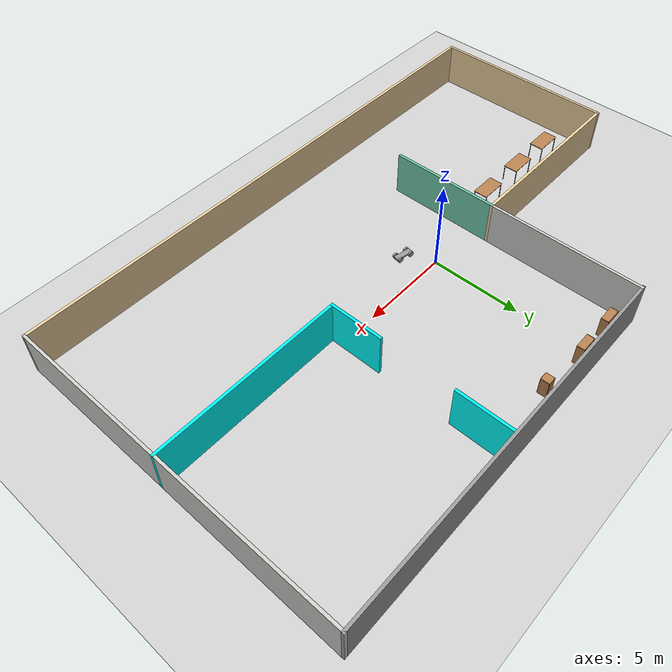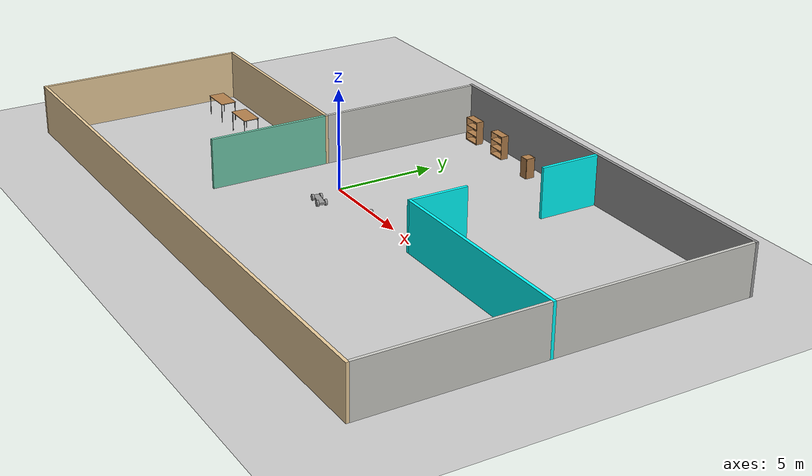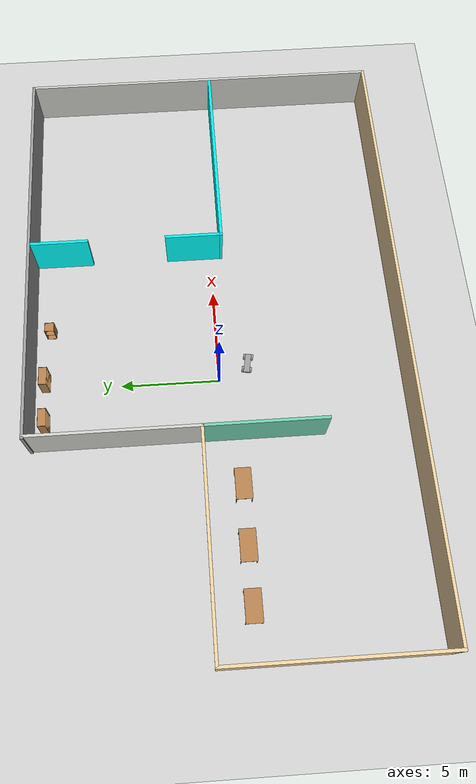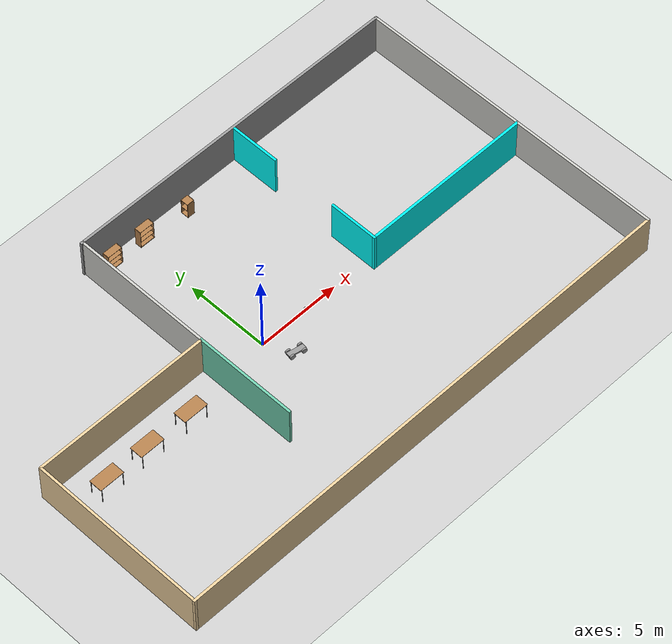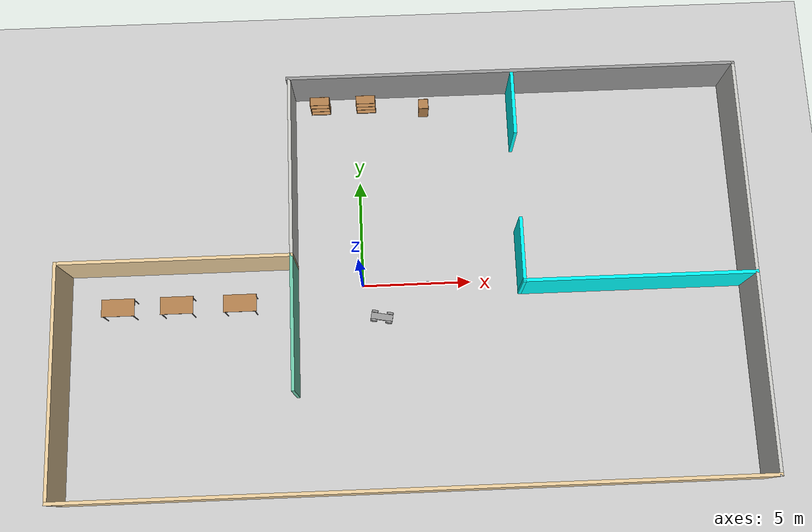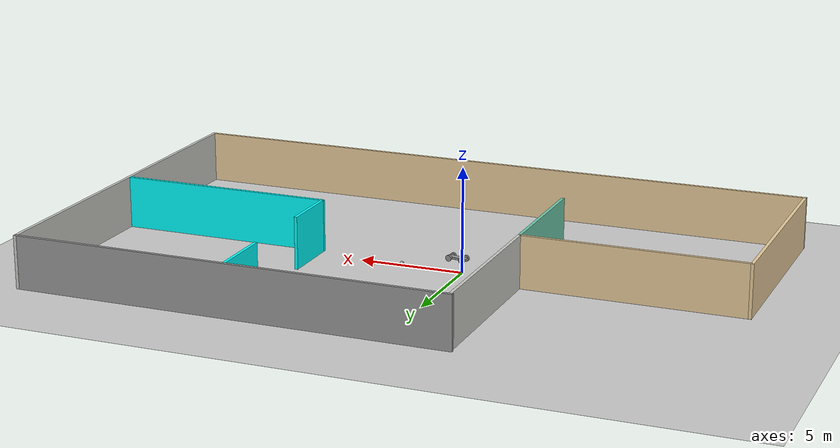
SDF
<sdf version="1.6">
 <world name="default">
  <model name="ground_plane">
   <static>1</static>
   <link name="link">
    <collision name="collision">
     <geometry><plane><normal>0 0 1</normal><size>100 100</size></plane></geometry>
     <surface>
      <contact><collide_bitmask>65535</collide_bitmask></contact>
      <friction><ode><mu>100</mu><mu2>50</mu2></ode></friction>
     </surface>
    </collision>
    <visual name="visual">
     <cast_shadows>0</cast_shadows>
     <geometry><plane><normal>0 0 1</normal><size>100 100</size></plane></geometry>
     <material>
      <script><uri>file://media/materials/scripts/gazebo.material</uri><name>Gazebo/Grey</name></script>
     </material>
    </visual>
   </link>
  </model>
  <model name="building">
   <pose>1.986 0.00092 0 0 -0 0</pose>
   <link name="Wall_10">
    <collision name="Wall_10_Collision">
     <geometry><box><size>6.15 0.15 2.5</size></box></geometry>
     <pose>0 0 1.25 0 -0 0</pose>
    </collision>
    <visual name="Wall_10_Visual">
     <pose>0 0 1.25 0 -0 0</pose>
     <geometry><box><size>6.15 0.15 2.5</size></box></geometry>
     <material>
      <script><uri>file://media/materials/scripts/gazebo.material</uri><name>Gazebo/Grey</name></script>
      <ambient>0.435294 0.796078 0.67451 1</ambient>
     </material>
     <meta><layer>0</layer></meta>
    </visual>
    <pose>-5.063 -2.00092 0 0 0 -1.5708</pose>
   </link>
   <link name="Wall_12">
    <collision name="Wall_12_Collision">
     <geometry><box><size>10.4574 0.15 2.5</size></box></geometry>
     <pose>0 0 1.25 0 -0 0</pose>
    </collision>
    <visual name="Wall_12_Visual">
     <pose>0 0 1.25 0 -0 0</pose>
     <geometry><box><size>10.4574 0.15 2.5</size></box></geometry>
     <material>
      <script><uri>file://media/materials/scripts/gazebo.material</uri><name>Gazebo/Grey</name></script>
      <ambient>0 1 1 1</ambient>
     </material>
     <meta><layer>0</layer></meta>
    </visual>
    <pose>10.3965 -0.568923 0 0 -0 3.14159</pose>
   </link>
   <link name="Wall_13">
    <collision name="Wall_13_Collision">
     <geometry><box><size>3 0.15 2.5</size></box></geometry>
     <pose>0 0 1.25 0 -0 0</pose>
    </collision>
    <visual name="Wall_13_Visual">
     <pose>0 0 1.25 0 -0 0</pose>
     <geometry><box><size>3 0.15 2.5</size></box></geometry>
     <material>
      <script><uri>file://media/materials/scripts/gazebo.material</uri><name>Gazebo/Grey</name></script>
      <ambient>0 1 1 1</ambient>
     </material>
     <meta><layer>0</layer></meta>
    </visual>
    <pose>5.24289 0.856077 0 0 -0 1.57087</pose>
   </link>
   <link name="Wall_15">
    <collision name="Wall_15_Collision">
     <geometry><box><size>3 0.15 2.5</size></box></geometry>
     <pose>0 0 1.25 0 -0 0</pose>
    </collision>
    <visual name="Wall_15_Visual">
     <pose>0 0 1.25 0 -0 0</pose>
     <geometry><box><size>3 0.15 2.5</size></box></geometry>
     <material>
      <script><uri>file://media/materials/scripts/gazebo.material</uri><name>Gazebo/Grey</name></script>
      <ambient>0 1 1 1</ambient>
     </material>
     <meta><layer>0</layer></meta>
    </visual>
    <pose>5.25855 7.85224 0 0 0 -1.5708</pose>
   </link>
   <link name="Wall_3">
    <collision name="Wall_3_Collision">
     <geometry><box><size>10.5741 0.15 2.5</size></box></geometry>
     <pose>0 0 1.25 0 -0 0</pose>
    </collision>
    <visual name="Wall_3_Visual">
     <pose>0 0 1.25 0 -0 0</pose>
     <geometry><box><size>10.5741 0.15 2.5</size></box></geometry>
     <material>
      <script><uri>file://media/materials/scripts/gazebo.material</uri><name>Gazebo/Grey</name></script>
      <ambient>0.921569 0.807843 0.615686 1</ambient>
     </material>
     <meta><layer>0</layer></meta>
    </visual>
    <pose>-15.55 -4.21292 0 0 0 -1.5708</pose>
   </link>
   <link name="Wall_4">
    <collision name="Wall_4_Collision">
     <geometry><box><size>31.25 0.15 2.5</size></box></geometry>
     <pose>0 0 1.25 0 -0 0</pose>
    </collision>
    <visual name="Wall_4_Visual">
     <pose>0 0 1.25 0 -0 0</pose>
     <geometry><box><size>31.25 0.15 2.5</size></box></geometry>
     <material>
      <script><uri>file://media/materials/scripts/gazebo.material</uri><name>Gazebo/Grey</name></script>
      <ambient>0.921569 0.807843 0.615686 1</ambient>
     </material>
     <meta><layer>0</layer></meta>
    </visual>
    <pose>-0.000188 -9.42496 0 0 0 -3e-06</pose>
   </link>
   <link name="Wall_5">
    <collision name="Wall_5_Collision">
     <geometry><box><size>19 0.15 2.5</size></box></geometry>
     <pose>0 0 1.25 0 -0 0</pose>
    </collision>
    <visual name="Wall_5_Visual">
     <pose>0 0 1.25 0 -0 0</pose>
     <geometry><box><size>19 0.15 2.5</size></box></geometry>
     <material>
      <script><uri>file://media/materials/scripts/gazebo.material</uri><name>Gazebo/CeilingTiled</name></script>
      <ambient>1 1 1 1</ambient>
     </material>
     <meta><layer>0</layer></meta>
    </visual>
    <pose>15.5496 -1e-06 0 0 -0 1.5708</pose>
   </link>
   <link name="Wall_6">
    <collision name="Wall_6_Collision">
     <geometry><box><size>20.8246 0.15 2.5</size></box></geometry>
     <pose>0 0 1.25 0 -0 0</pose>
    </collision>
    <visual name="Wall_6_Visual">
     <pose>0 0 1.25 0 -0 0</pose>
     <geometry><box><size>20.8246 0.15 2.5</size></box></geometry>
     <material>
      <script><uri>file://media/materials/scripts/gazebo.material</uri><name>Gazebo/Grey</name></script>
      <ambient>1 1 1 1</ambient>
     </material>
     <meta><layer>0</layer></meta>
    </visual>
    <pose>5.21234 9.425 0 0 -0 3.14159</pose>
   </link>
   <link name="Wall_7">
    <collision name="Wall_7_Collision">
     <geometry><box><size>8.57592 0.15 2.5</size></box></geometry>
     <pose>0 0 1.25 0 -0 0</pose>
    </collision>
    <visual name="Wall_7_Visual">
     <pose>0 0 1.25 0 -0 0</pose>
     <geometry><box><size>8.57592 0.15 2.5</size></box></geometry>
     <material>
      <script><uri>file://media/materials/scripts/gazebo.material</uri><name>Gazebo/CeilingTiled</name></script>
      <ambient>1 1 1 1</ambient>
     </material>
     <meta><layer>0</layer></meta>
    </visual>
    <pose>-5.06321 5.21204 0 0 0 -1.57075</pose>
   </link>
   <link name="Wall_8">
    <collision name="Wall_8_Collision">
     <geometry><box><size>10.5754 0.15 2.5</size></box></geometry>
     <pose>0 0 1.25 0 -0 0</pose>
    </collision>
    <visual name="Wall_8_Visual">
     <pose>0 0 1.25 0 -0 0</pose>
     <geometry><box><size>10.5754 0.15 2.5</size></box></geometry>
     <material>
      <script><uri>file://media/materials/scripts/gazebo.material</uri><name>Gazebo/Grey</name></script>
      <ambient>0.921569 0.807843 0.615686 1</ambient>
     </material>
     <meta><layer>0</layer></meta>
    </visual>
    <pose>-10.2755 0.999077 0 0 -0 3.14159</pose>
   </link>
   <static>1</static>
  </model>
  <model name="table">
   <static>1</static>
   <link name="link">
    <collision name="surface">
     <pose>0 0 1 0 -0 0</pose>
     <geometry><box><size>1.5 0.8 0.03</size></box></geometry>
     <surface><friction><ode><mu>0.6</mu><mu2>0.6</mu2></ode></friction></surface>
    </collision>
    <visual name="visual1">
     <pose>0 0 1 0 -0 0</pose>
     <geometry><box><size>1.5 0.8 0.03</size></box></geometry>
     <material>
      <script><uri>file://media/materials/scripts/gazebo.material</uri><name>Gazebo/Wood</name></script>
     </material>
    </visual>
    <collision name="front_left_leg">
     <pose>0.68 0.38 0.5 0 -0 0</pose>
     <geometry><cylinder><radius>0.02</radius><length>1</length></cylinder></geometry>
    </collision>
    <visual name="front_left_leg">
     <pose>0.68 0.38 0.5 0 -0 0</pose>
     <geometry><cylinder><radius>0.02</radius><length>1</length></cylinder></geometry>
     <material>
      <script><uri>file://media/materials/scripts/gazebo.material</uri><name>Gazebo/Grey</name></script>
     </material>
    </visual>
    <collision name="front_right_leg">
     <pose>0.68 -0.38 0.5 0 -0 0</pose>
     <geometry><cylinder><radius>0.02</radius><length>1</length></cylinder></geometry>
    </collision>
    <visual name="front_right_leg">
     <pose>0.68 -0.38 0.5 0 -0 0</pose>
     <geometry><cylinder><radius>0.02</radius><length>1</length></cylinder></geometry>
     <material>
      <script><uri>file://media/materials/scripts/gazebo.material</uri><name>Gazebo/Grey</name></script>
     </material>
    </visual>
    <collision name="back_right_leg">
     <pose>-0.68 -0.38 0.5 0 -0 0</pose>
     <geometry><cylinder><radius>0.02</radius><length>1</length></cylinder></geometry>
    </collision>
    <visual name="back_right_leg">
     <pose>-0.68 -0.38 0.5 0 -0 0</pose>
     <geometry><cylinder><radius>0.02</radius><length>1</length></cylinder></geometry>
     <material>
      <script><uri>file://media/materials/scripts/gazebo.material</uri><name>Gazebo/Grey</name></script>
     </material>
    </visual>
    <collision name="back_left_leg">
     <pose>-0.68 0.38 0.5 0 -0 0</pose>
     <geometry><cylinder><radius>0.02</radius><length>1</length></cylinder></geometry>
    </collision>
    <visual name="back_left_leg">
     <pose>-0.68 0.38 0.5 0 -0 0</pose>
     <geometry><cylinder><radius>0.02</radius><length>1</length></cylinder></geometry>
     <material>
      <script><uri>file://media/materials/scripts/gazebo.material</uri><name>Gazebo/Grey</name></script>
     </material>
    </visual>
   </link>
   <pose>-11.1076 -0.793814 0 0 -0 0</pose>
  </model>
  <model name="table_3">
   <static>1</static>
   <link name="link">
    <collision name="surface">
     <pose>0 0 1 0 -0 0</pose>
     <geometry><box><size>1.5 0.8 0.03</size></box></geometry>
     <surface><friction><ode><mu>0.6</mu><mu2>0.6</mu2></ode></friction></surface>
    </collision>
    <visual name="visual1">
     <pose>0 0 1 0 -0 0</pose>
     <geometry><box><size>1.5 0.8 0.03</size></box></geometry>
     <material>
      <script><uri>file://media/materials/scripts/gazebo.material</uri><name>Gazebo/Wood</name></script>
     </material>
    </visual>
    <collision name="front_left_leg">
     <pose>0.68 0.38 0.5 0 -0 0</pose>
     <geometry><cylinder><radius>0.02</radius><length>1</length></cylinder></geometry>
    </collision>
    <visual name="front_left_leg">
     <pose>0.68 0.38 0.5 0 -0 0</pose>
     <geometry><cylinder><radius>0.02</radius><length>1</length></cylinder></geometry>
     <material>
      <script><uri>file://media/materials/scripts/gazebo.material</uri><name>Gazebo/Grey</name></script>
     </material>
    </visual>
    <collision name="front_right_leg">
     <pose>0.68 -0.38 0.5 0 -0 0</pose>
     <geometry><cylinder><radius>0.02</radius><length>1</length></cylinder></geometry>
    </collision>
    <visual name="front_right_leg">
     <pose>0.68 -0.38 0.5 0 -0 0</pose>
     <geometry><cylinder><radius>0.02</radius><length>1</length></cylinder></geometry>
     <material>
      <script><uri>file://media/materials/scripts/gazebo.material</uri><name>Gazebo/Grey</name></script>
     </material>
    </visual>
    <collision name="back_right_leg">
     <pose>-0.68 -0.38 0.5 0 -0 0</pose>
     <geometry><cylinder><radius>0.02</radius><length>1</length></cylinder></geometry>
    </collision>
    <visual name="back_right_leg">
     <pose>-0.68 -0.38 0.5 0 -0 0</pose>
     <geometry><cylinder><radius>0.02</radius><length>1</length></cylinder></geometry>
     <material>
      <script><uri>file://media/materials/scripts/gazebo.material</uri><name>Gazebo/Grey</name></script>
     </material>
    </visual>
    <collision name="back_left_leg">
     <pose>-0.68 0.38 0.5 0 -0 0</pose>
     <geometry><cylinder><radius>0.02</radius><length>1</length></cylinder></geometry>
    </collision>
    <visual name="back_left_leg">
     <pose>-0.68 0.38 0.5 0 -0 0</pose>
     <geometry><cylinder><radius>0.02</radius><length>1</length></cylinder></geometry>
     <material>
      <script><uri>file://media/materials/scripts/gazebo.material</uri><name>Gazebo/Grey</name></script>
     </material>
    </visual>
   </link>
   <pose>-8.45188 -0.777203 0 0 -0 0</pose>
  </model>
  <model name="table_7">
   <static>1</static>
   <link name="link">
    <collision name="surface">
     <pose>0 0 1 0 -0 0</pose>
     <geometry><box><size>1.5 0.8 0.03</size></box></geometry>
     <surface><friction><ode><mu>0.6</mu><mu2>0.6</mu2></ode></friction></surface>
    </collision>
    <visual name="visual1">
     <pose>0 0 1 0 -0 0</pose>
     <geometry><box><size>1.5 0.8 0.03</size></box></geometry>
     <material>
      <script><uri>file://media/materials/scripts/gazebo.material</uri><name>Gazebo/Wood</name></script>
     </material>
    </visual>
    <collision name="front_left_leg">
     <pose>0.68 0.38 0.5 0 -0 0</pose>
     <geometry><cylinder><radius>0.02</radius><length>1</length></cylinder></geometry>
    </collision>
    <visual name="front_left_leg">
     <pose>0.68 0.38 0.5 0 -0 0</pose>
     <geometry><cylinder><radius>0.02</radius><length>1</length></cylinder></geometry>
     <material>
      <script><uri>file://media/materials/scripts/gazebo.material</uri><name>Gazebo/Grey</name></script>
     </material>
    </visual>
    <collision name="front_right_leg">
     <pose>0.68 -0.38 0.5 0 -0 0</pose>
     <geometry><cylinder><radius>0.02</radius><length>1</length></cylinder></geometry>
    </collision>
    <visual name="front_right_leg">
     <pose>0.68 -0.38 0.5 0 -0 0</pose>
     <geometry><cylinder><radius>0.02</radius><length>1</length></cylinder></geometry>
     <material>
      <script><uri>file://media/materials/scripts/gazebo.material</uri><name>Gazebo/Grey</name></script>
     </material>
    </visual>
    <collision name="back_right_leg">
     <pose>-0.68 -0.38 0.5 0 -0 0</pose>
     <geometry><cylinder><radius>0.02</radius><length>1</length></cylinder></geometry>
    </collision>
    <visual name="back_right_leg">
     <pose>-0.68 -0.38 0.5 0 -0 0</pose>
     <geometry><cylinder><radius>0.02</radius><length>1</length></cylinder></geometry>
     <material>
      <script><uri>file://media/materials/scripts/gazebo.material</uri><name>Gazebo/Grey</name></script>
     </material>
    </visual>
    <collision name="back_left_leg">
     <pose>-0.68 0.38 0.5 0 -0 0</pose>
     <geometry><cylinder><radius>0.02</radius><length>1</length></cylinder></geometry>
    </collision>
    <visual name="back_left_leg">
     <pose>-0.68 0.38 0.5 0 -0 0</pose>
     <geometry><cylinder><radius>0.02</radius><length>1</length></cylinder></geometry>
     <material>
      <script><uri>file://media/materials/scripts/gazebo.material</uri><name>Gazebo/Grey</name></script>
     </material>
    </visual>
   </link>
   <pose>-5.58712 -0.783309 0 0 -0 0</pose>
  </model>
  <model name="bookshelf">
   <static>1</static>
   <link name="link">
    <inertial><mass>1</mass></inertial>
    <collision name="back">
     <pose>0 0.005 0.6 0 -0 0</pose>
     <geometry><box><size>0.9 0.01 1.2</size></box></geometry>
    </collision>
    <visual name="visual1">
     <pose>0 0.005 0.6 0 -0 0</pose>
     <geometry><box><size>0.9 0.01 1.2</size></box></geometry>
     <material>
      <script><uri>file://media/materials/scripts/gazebo.material</uri><name>Gazebo/Wood</name></script>
     </material>
    </visual>
    <collision name="left_side">
     <pose>0.45 -0.195 0.6 0 -0 0</pose>
     <geometry><box><size>0.02 0.4 1.2</size></box></geometry>
    </collision>
    <visual name="visual2">
     <pose>0.45 -0.195 0.6 0 -0 0</pose>
     <geometry><box><size>0.02 0.4 1.2</size></box></geometry>
     <material>
      <script><uri>file://media/materials/scripts/gazebo.material</uri><name>Gazebo/Wood</name></script>
     </material>
    </visual>
    <collision name="right_side">
     <pose>-0.45 -0.195 0.6 0 -0 0</pose>
     <geometry><box><size>0.02 0.4 1.2</size></box></geometry>
    </collision>
    <visual name="visual3">
     <pose>-0.45 -0.195 0.6 0 -0 0</pose>
     <geometry><box><size>0.02 0.4 1.2</size></box></geometry>
     <material>
      <script><uri>file://media/materials/scripts/gazebo.material</uri><name>Gazebo/Wood</name></script>
     </material>
    </visual>
    <collision name="bottom">
     <pose>0 -0.195 0.03 0 -0 0</pose>
     <geometry><box><size>0.88 0.4 0.06</size></box></geometry>
    </collision>
    <visual name="visual4">
     <pose>0 -0.195 0.03 0 -0 0</pose>
     <geometry><box><size>0.88 0.4 0.06</size></box></geometry>
     <material>
      <script><uri>file://media/materials/scripts/gazebo.material</uri><name>Gazebo/Wood</name></script>
     </material>
    </visual>
    <collision name="top">
     <pose>0 -0.195 1.19 0 -0 0</pose>
     <geometry><box><size>0.88 0.4 0.02</size></box></geometry>
    </collision>
    <visual name="visual5">
     <pose>0 -0.195 1.19 0 -0 0</pose>
     <geometry><box><size>0.88 0.4 0.02</size></box></geometry>
     <material>
      <script><uri>file://media/materials/scripts/gazebo.material</uri><name>Gazebo/Wood</name></script>
     </material>
    </visual>
    <collision name="low_shelf">
     <pose>0 -0.195 0.43 0 -0 0</pose>
     <geometry><box><size>0.88 0.4 0.02</size></box></geometry>
    </collision>
    <visual name="visual6">
     <pose>0 -0.195 0.43 0 -0 0</pose>
     <geometry><box><size>0.88 0.4 0.02</size></box></geometry>
     <material>
      <script><uri>file://media/materials/scripts/gazebo.material</uri><name>Gazebo/Wood</name></script>
     </material>
    </visual>
    <collision name="high_shelf">
     <pose>0 -0.195 0.8 0 -0 0</pose>
     <geometry><box><size>0.88 0.4 0.02</size></box></geometry>
    </collision>
    <visual name="visual7">
     <pose>0 -0.195 0.8 0 -0 0</pose>
     <geometry><box><size>0.88 0.4 0.02</size></box></geometry>
     <material>
      <script><uri>file://media/materials/scripts/gazebo.material</uri><name>Gazebo/Wood</name></script>
     </material>
    </visual>
   </link>
   <pose>-1.77258 8.9835 0 0 -0 0</pose>
  </model>
  <model name="bookshelf_0">
   <static>1</static>
   <link name="link">
    <inertial><mass>1</mass></inertial>
    <collision name="back">
     <pose>0 0.005 0.6 0 -0 0</pose>
     <geometry><box><size>0.9 0.01 1.2</size></box></geometry>
    </collision>
    <visual name="visual1">
     <pose>0 0.005 0.6 0 -0 0</pose>
     <geometry><box><size>0.9 0.01 1.2</size></box></geometry>
     <material>
      <script><uri>file://media/materials/scripts/gazebo.material</uri><name>Gazebo/Wood</name></script>
     </material>
    </visual>
    <collision name="left_side">
     <pose>0.45 -0.195 0.6 0 -0 0</pose>
     <geometry><box><size>0.02 0.4 1.2</size></box></geometry>
    </collision>
    <visual name="visual2">
     <pose>0.45 -0.195 0.6 0 -0 0</pose>
     <geometry><box><size>0.02 0.4 1.2</size></box></geometry>
     <material>
      <script><uri>file://media/materials/scripts/gazebo.material</uri><name>Gazebo/Wood</name></script>
     </material>
    </visual>
    <collision name="right_side">
     <pose>-0.45 -0.195 0.6 0 -0 0</pose>
     <geometry><box><size>0.02 0.4 1.2</size></box></geometry>
    </collision>
    <visual name="visual3">
     <pose>-0.45 -0.195 0.6 0 -0 0</pose>
     <geometry><box><size>0.02 0.4 1.2</size></box></geometry>
     <material>
      <script><uri>file://media/materials/scripts/gazebo.material</uri><name>Gazebo/Wood</name></script>
     </material>
    </visual>
    <collision name="bottom">
     <pose>0 -0.195 0.03 0 -0 0</pose>
     <geometry><box><size>0.88 0.4 0.06</size></box></geometry>
    </collision>
    <visual name="visual4">
     <pose>0 -0.195 0.03 0 -0 0</pose>
     <geometry><box><size>0.88 0.4 0.06</size></box></geometry>
     <material>
      <script><uri>file://media/materials/scripts/gazebo.material</uri><name>Gazebo/Wood</name></script>
     </material>
    </visual>
    <collision name="top">
     <pose>0 -0.195 1.19 0 -0 0</pose>
     <geometry><box><size>0.88 0.4 0.02</size></box></geometry>
    </collision>
    <visual name="visual5">
     <pose>0 -0.195 1.19 0 -0 0</pose>
     <geometry><box><size>0.88 0.4 0.02</size></box></geometry>
     <material>
      <script><uri>file://media/materials/scripts/gazebo.material</uri><name>Gazebo/Wood</name></script>
     </material>
    </visual>
    <collision name="low_shelf">
     <pose>0 -0.195 0.43 0 -0 0</pose>
     <geometry><box><size>0.88 0.4 0.02</size></box></geometry>
    </collision>
    <visual name="visual6">
     <pose>0 -0.195 0.43 0 -0 0</pose>
     <geometry><box><size>0.88 0.4 0.02</size></box></geometry>
     <material>
      <script><uri>file://media/materials/scripts/gazebo.material</uri><name>Gazebo/Wood</name></script>
     </material>
    </visual>
    <collision name="high_shelf">
     <pose>0 -0.195 0.8 0 -0 0</pose>
     <geometry><box><size>0.88 0.4 0.02</size></box></geometry>
    </collision>
    <visual name="visual7">
     <pose>0 -0.195 0.8 0 -0 0</pose>
     <geometry><box><size>0.88 0.4 0.02</size></box></geometry>
     <material>
      <script><uri>file://media/materials/scripts/gazebo.material</uri><name>Gazebo/Wood</name></script>
     </material>
    </visual>
   </link>
   <pose>0.398698 8.99008 0 0 -0 0</pose>
  </model>
  <model name="cabinet">
   <static>1</static>
   <link name="cabinet_bottom_plate">
    <inertial>
     <pose>0 0 -1 0 -0 0</pose>
     <inertia><ixx>2.05</ixx><ixy>0</ixy><ixz>0</ixz><iyy>2.05</iyy><iyz>0</iyz><izz>2.05</izz></inertia>
     <mass>25</mass>
    </inertial>
    <collision name="cabinet_bottom_plate_geom">
     <pose>0 0 0.01 0 -0 0</pose>
     <geometry><box><size>0.45 0.45 0.02</size></box></geometry>
    </collision>
    <visual name="cabinet_bottom_plate_geom_visual">
     <pose>0 0 0.01 0 -0 0</pose>
     <geometry><box><size>0.45 0.45 0.02</size></box></geometry>
     <material>
      <script><uri>file://media/materials/scripts/gazebo.material</uri><name>Gazebo/Wood</name></script>
     </material>
    </visual>
    <collision name="cabinet_bottom_plate_geom_cabinet_back_plate">
     <pose>0.235 0 0.51 0 -0 0</pose>
     <geometry><box><size>0.02 0.45 1.02</size></box></geometry>
    </collision>
    <visual name="cabinet_bottom_plate_geom_cabinet_back_plate_visual">
     <pose>0.235 0 0.51 0 -0 0</pose>
     <geometry><box><size>0.02 0.45 1.02</size></box></geometry>
     <material>
      <script><uri>file://media/materials/scripts/gazebo.material</uri><name>Gazebo/Wood</name></script>
     </material>
    </visual>
    <collision name="cabinet_bottom_plate_geom_cabinet_left_plate">
     <pose>0 0.235 0.51 0 -0 0</pose>
     <geometry><box><size>0.45 0.02 1.02</size></box></geometry>
    </collision>
    <visual name="cabinet_bottom_plate_geom_cabinet_left_plate_visual">
     <pose>0 0.235 0.51 0 -0 0</pose>
     <geometry><box><size>0.45 0.02 1.02</size></box></geometry>
     <material>
      <script><uri>file://media/materials/scripts/gazebo.material</uri><name>Gazebo/Wood</name></script>
     </material>
    </visual>
    <collision name="cabinet_bottom_plate_geom_cabinet_middle_plate">
     <pose>0 0 0.51 0 -0 0</pose>
     <geometry><box><size>0.45 0.45 0.02</size></box></geometry>
    </collision>
    <visual name="cabinet_bottom_plate_geom_cabinet_middle_plate_visual">
     <pose>0 0 0.51 0 -0 0</pose>
     <geometry><box><size>0.45 0.45 0.02</size></box></geometry>
     <material>
      <script><uri>file://media/materials/scripts/gazebo.material</uri><name>Gazebo/Wood</name></script>
     </material>
    </visual>
    <collision name="cabinet_bottom_plate_geom_cabinet_right_plate">
     <pose>0 -0.235 0.51 0 -0 0</pose>
     <geometry><box><size>0.45 0.02 1.02</size></box></geometry>
    </collision>
    <visual name="cabinet_bottom_plate_geom_cabinet_right_plate_visual">
     <pose>0 -0.235 0.51 0 -0 0</pose>
     <geometry><box><size>0.45 0.02 1.02</size></box></geometry>
     <material>
      <script><uri>file://media/materials/scripts/gazebo.material</uri><name>Gazebo/Wood</name></script>
     </material>
    </visual>
    <collision name="cabinet_bottom_plate_geom_cabinet_top_plate">
     <pose>0 0 1.01 0 -0 0</pose>
     <geometry><box><size>0.45 0.45 0.02</size></box></geometry>
    </collision>
    <visual name="cabinet_bottom_plate_geom_cabinet_top_plate_visual">
     <pose>0 0 1.01 0 -0 0</pose>
     <geometry><box><size>0.45 0.45 0.02</size></box></geometry>
     <material>
      <script><uri>file://media/materials/scripts/gazebo.material</uri><name>Gazebo/Wood</name></script>
     </material>
    </visual>
   </link>
   <pose>3.13165 8.54785 0 0 -0 0</pose>
  </model>
  <model name="rover">
   <link name="link_0">
    <inertial>
     <mass>1</mass>
     <inertia>
      <ixx>0.166667</ixx>
      <ixy>0</ixy>
      <ixz>0</ixz>
      <iyy>0.166667</iyy>
      <iyz>0</iyz>
      <izz>0.166667</izz>
     </inertia>
    </inertial>
    <pose>0.490216 -0.820005 0.106749 0 -0 0</pose>
    <visual name="visual">
     <geometry><box><size>1 0.3 0.1</size></box></geometry>
     <material>
      <lighting>1</lighting>
      <script><uri>file://media/materials/scripts/gazebo.material</uri><name>Gazebo/Grey</name></script>
      <shader type="vertex"><normal_map>__default__</normal_map></shader>
      <ambient>0.3 0.3 0.3 1</ambient>
      <diffuse>0.7 0.7 0.7 1</diffuse>
      <specular>0.01 0.01 0.01 1</specular>
      <emissive>0 0 0 1</emissive>
     </material>
    </visual>
    <collision name="collision">
     <geometry><box><size>1 0.3 0.1</size></box></geometry>
     <surface>
      <friction>
       <ode><mu>1</mu><mu2>1</mu2><fdir1>0 0 0</fdir1><slip1>0</slip1><slip2>0</slip2></ode>
       <torsional>
        <coefficient>1</coefficient>
        <patch_radius>0</patch_radius>
        <surface_radius>0</surface_radius>
        <use_patch_radius>1</use_patch_radius>
        <ode><slip>0</slip></ode>
       </torsional>
      </friction>
      <bounce><restitution_coefficient>0</restitution_coefficient><threshold>1e+06</threshold></bounce>
      <contact>
       <collide_without_contact>0</collide_without_contact>
       <collide_without_contact_bitmask>1</collide_without_contact_bitmask>
       <collide_bitmask>1</collide_bitmask>
       <ode>
        <soft_cfm>0</soft_cfm>
        <soft_erp>0.2</soft_erp>
        <kp>1e+13</kp>
        <kd>1</kd>
        <max_vel>0.01</max_vel>
        <min_depth>0</min_depth>
       </ode>
       <bullet>
        <split_impulse>1</split_impulse>
        <split_impulse_penetration_threshold>-0.01</split_impulse_penetration_threshold>
        <soft_cfm>0</soft_cfm>
        <soft_erp>0.2</soft_erp>
        <kp>1e+13</kp>
        <kd>1</kd>
       </bullet>
      </contact>
     </surface>
    </collision>
   </link>
   <link name="link_1">
    <inertial>
     <mass>1</mass>
     <inertia><ixx>0.145833</ixx><ixy>0</ixy><ixz>0</ixz><iyy>0.145833</iyy><iyz>0</iyz><izz>0.125</izz></inertia>
    </inertial>
    <pose>0.140216 -1.02012 0.096637 1.57 -0 0</pose>
    <visual name="visual">
     <geometry><cylinder><radius>0.15</radius><length>0.1</length></cylinder></geometry>
     <material>
      <lighting>1</lighting>
      <script><uri>file://media/materials/scripts/gazebo.material</uri><name>Gazebo/Grey</name></script>
      <shader type="vertex"><normal_map>__default__</normal_map></shader>
      <ambient>0.3 0.3 0.3 1</ambient>
      <diffuse>0.7 0.7 0.7 1</diffuse>
      <specular>0.01 0.01 0.01 1</specular>
      <emissive>0 0 0 1</emissive>
     </material>
    </visual>
    <collision name="collision">
     <geometry><cylinder><radius>0.15</radius><length>0.1</length></cylinder></geometry>
     <surface>
      <friction>
       <ode><mu>1</mu><mu2>1</mu2><fdir1>0 0 0</fdir1><slip1>0</slip1><slip2>0</slip2></ode>
       <torsional>
        <coefficient>1</coefficient>
        <patch_radius>0</patch_radius>
        <surface_radius>0</surface_radius>
        <use_patch_radius>1</use_patch_radius>
        <ode><slip>0</slip></ode>
       </torsional>
      </friction>
      <bounce><restitution_coefficient>0</restitution_coefficient><threshold>1e+06</threshold></bounce>
      <contact>
       <collide_without_contact>0</collide_without_contact>
       <collide_without_contact_bitmask>1</collide_without_contact_bitmask>
       <collide_bitmask>1</collide_bitmask>
       <ode>
        <soft_cfm>0</soft_cfm>
        <soft_erp>0.2</soft_erp>
        <kp>1e+13</kp>
        <kd>1</kd>
        <max_vel>0.01</max_vel>
        <min_depth>0</min_depth>
       </ode>
       <bullet>
        <split_impulse>1</split_impulse>
        <split_impulse_penetration_threshold>-0.01</split_impulse_penetration_threshold>
        <soft_cfm>0</soft_cfm>
        <soft_erp>0.2</soft_erp>
        <kp>1e+13</kp>
        <kd>1</kd>
       </bullet>
      </contact>
     </surface>
    </collision>
   </link>
   <link name="link_2">
    <inertial>
     <mass>1</mass>
     <inertia><ixx>0.145833</ixx><ixy>0</ixy><ixz>0</ixz><iyy>0.145833</iyy><iyz>0</iyz><izz>0.125</izz></inertia>
    </inertial>
    <pose>0.840216 -1.02012 0.096637 1.57 -0 0</pose>
    <visual name="visual">
     <geometry><cylinder><radius>0.15</radius><length>0.1</length></cylinder></geometry>
     <material>
      <lighting>1</lighting>
      <script><uri>file://media/materials/scripts/gazebo.material</uri><name>Gazebo/Grey</name></script>
      <shader type="vertex"><normal_map>__default__</normal_map></shader>
      <ambient>0.3 0.3 0.3 1</ambient>
      <diffuse>0.7 0.7 0.7 1</diffuse>
      <specular>0.01 0.01 0.01 1</specular>
      <emissive>0 0 0 1</emissive>
     </material>
    </visual>
    <collision name="collision">
     <geometry><cylinder><radius>0.15</radius><length>0.1</length></cylinder></geometry>
     <surface>
      <friction>
       <ode><mu>1</mu><mu2>1</mu2><fdir1>0 0 0</fdir1><slip1>0</slip1><slip2>0</slip2></ode>
       <torsional>
        <coefficient>1</coefficient>
        <patch_radius>0</patch_radius>
        <surface_radius>0</surface_radius>
        <use_patch_radius>1</use_patch_radius>
        <ode><slip>0</slip></ode>
       </torsional>
      </friction>
      <bounce><restitution_coefficient>0</restitution_coefficient><threshold>1e+06</threshold></bounce>
      <contact>
       <collide_without_contact>0</collide_without_contact>
       <collide_without_contact_bitmask>1</collide_without_contact_bitmask>
       <collide_bitmask>1</collide_bitmask>
       <ode>
        <soft_cfm>0</soft_cfm>
        <soft_erp>0.2</soft_erp>
        <kp>1e+13</kp>
        <kd>1</kd>
        <max_vel>0.01</max_vel>
        <min_depth>0</min_depth>
       </ode>
       <bullet>
        <split_impulse>1</split_impulse>
        <split_impulse_penetration_threshold>-0.01</split_impulse_penetration_threshold>
        <soft_cfm>0</soft_cfm>
        <soft_erp>0.2</soft_erp>
        <kp>1e+13</kp>
        <kd>1</kd>
       </bullet>
      </contact>
     </surface>
    </collision>
   </link>
   <link name="link_4">
    <inertial>
     <mass>1</mass>
     <inertia><ixx>0.145833</ixx><ixy>0</ixy><ixz>0</ixz><iyy>0.145833</iyy><iyz>0</iyz><izz>0.125</izz></inertia>
    </inertial>
    <pose>0.840216 -0.619885 0.096637 -1.57 0 0</pose>
    <visual name="visual">
     <geometry><cylinder><radius>0.15</radius><length>0.1</length></cylinder></geometry>
     <material>
      <lighting>1</lighting>
      <script><uri>file://media/materials/scripts/gazebo.material</uri><name>Gazebo/Grey</name></script>
      <shader type="vertex"><normal_map>__default__</normal_map></shader>
      <ambient>0.3 0.3 0.3 1</ambient>
      <diffuse>0.7 0.7 0.7 1</diffuse>
      <specular>0.01 0.01 0.01 1</specular>
      <emissive>0 0 0 1</emissive>
     </material>
    </visual>
    <collision name="collision">
     <geometry><cylinder><radius>0.15</radius><length>0.1</length></cylinder></geometry>
     <surface>
      <friction>
       <ode><mu>1</mu><mu2>1</mu2><fdir1>0 0 0</fdir1><slip1>0</slip1><slip2>0</slip2></ode>
       <torsional>
        <coefficient>1</coefficient>
        <patch_radius>0</patch_radius>
        <surface_radius>0</surface_radius>
        <use_patch_radius>1</use_patch_radius>
        <ode><slip>0</slip></ode>
       </torsional>
      </friction>
      <bounce><restitution_coefficient>0</restitution_coefficient><threshold>1e+06</threshold></bounce>
      <contact>
       <collide_without_contact>0</collide_without_contact>
       <collide_without_contact_bitmask>1</collide_without_contact_bitmask>
       <collide_bitmask>1</collide_bitmask>
       <ode>
        <soft_cfm>0</soft_cfm>
        <soft_erp>0.2</soft_erp>
        <kp>1e+13</kp>
        <kd>1</kd>
        <max_vel>0.01</max_vel>
        <min_depth>0</min_depth>
       </ode>
       <bullet>
        <split_impulse>1</split_impulse>
        <split_impulse_penetration_threshold>-0.01</split_impulse_penetration_threshold>
        <soft_cfm>0</soft_cfm>
        <soft_erp>0.2</soft_erp>
        <kp>1e+13</kp>
        <kd>1</kd>
       </bullet>
      </contact>
     </surface>
    </collision>
   </link>
   <link name="link_4_clone">
    <inertial>
     <mass>1</mass>
     <inertia><ixx>0.145833</ixx><ixy>0</ixy><ixz>0</ixz><iyy>0.145833</iyy><iyz>0</iyz><izz>0.125</izz></inertia>
    </inertial>
    <pose>0.140216 -0.619885 0.096709 -1.57 0 0</pose>
    <visual name="visual">
     <geometry><cylinder><radius>0.15</radius><length>0.1</length></cylinder></geometry>
     <material>
      <lighting>1</lighting>
      <script><uri>file://media/materials/scripts/gazebo.material</uri><name>Gazebo/Grey</name></script>
      <shader type="vertex"><normal_map>__default__</normal_map></shader>
      <ambient>0.3 0.3 0.3 1</ambient>
      <diffuse>0.7 0.7 0.7 1</diffuse>
      <specular>0.01 0.01 0.01 1</specular>
      <emissive>0 0 0 1</emissive>
     </material>
    </visual>
    <collision name="collision">
     <geometry><cylinder><radius>0.15</radius><length>0.1</length></cylinder></geometry>
     <surface>
      <friction>
       <ode><mu>1</mu><mu2>1</mu2><fdir1>0 0 0</fdir1><slip1>0</slip1><slip2>0</slip2></ode>
       <torsional>
        <coefficient>1</coefficient>
        <patch_radius>0</patch_radius>
        <surface_radius>0</surface_radius>
        <use_patch_radius>1</use_patch_radius>
        <ode><slip>0</slip></ode>
       </torsional>
      </friction>
      <bounce><restitution_coefficient>0</restitution_coefficient><threshold>1e+06</threshold></bounce>
      <contact>
       <collide_without_contact>0</collide_without_contact>
       <collide_without_contact_bitmask>1</collide_without_contact_bitmask>
       <collide_bitmask>1</collide_bitmask>
       <ode>
        <soft_cfm>0</soft_cfm>
        <soft_erp>0.2</soft_erp>
        <kp>1e+13</kp>
        <kd>1</kd>
        <max_vel>0.01</max_vel>
        <min_depth>0</min_depth>
       </ode>
       <bullet>
        <split_impulse>1</split_impulse>
        <split_impulse_penetration_threshold>-0.01</split_impulse_penetration_threshold>
        <soft_cfm>0</soft_cfm>
        <soft_erp>0.2</soft_erp>
        <kp>1e+13</kp>
        <kd>1</kd>
       </bullet>
      </contact>
     </surface>
    </collision>
   </link>
   <joint name="link_0_JOINT_10" type="revolute">
    <parent>link_0</parent>
    <child>link_1</child>
    <axis>
     <xyz>0 0 1</xyz>
     <use_parent_model_frame>0</use_parent_model_frame>
     <limit>
      <lower>-1.79769e+308</lower>
      <upper>1.79769e+308</upper>
      <effort>-1</effort>
      <velocity>-1</velocity>
     </limit>
     <dynamics>
      <spring_reference>0</spring_reference>
      <spring_stiffness>0</spring_stiffness>
      <damping>0</damping>
     </dynamics>
    </axis>
    <physics>
     <ode><limit><cfm>0</cfm><erp>0.2</erp></limit><suspension><cfm>0</cfm><erp>0.2</erp></suspension></ode>
    </physics>
   </joint>
   <joint name="link_0_JOINT_11" type="revolute">
    <parent>link_0</parent>
    <child>link_2</child>
    <axis>
     <xyz>0 0 1</xyz>
     <use_parent_model_frame>0</use_parent_model_frame>
     <limit>
      <lower>-1.79769e+308</lower>
      <upper>1.79769e+308</upper>
      <effort>-1</effort>
      <velocity>-1</velocity>
     </limit>
     <dynamics>
      <spring_reference>0</spring_reference>
      <spring_stiffness>0</spring_stiffness>
      <damping>0</damping>
     </dynamics>
    </axis>
    <physics>
     <ode><limit><cfm>0</cfm><erp>0.2</erp></limit><suspension><cfm>0</cfm><erp>0.2</erp></suspension></ode>
    </physics>
   </joint>
   <joint name="link_0_JOINT_13" type="revolute">
    <parent>link_0</parent>
    <child>link_4</child>
    <axis>
     <xyz>0 0 1</xyz>
     <use_parent_model_frame>0</use_parent_model_frame>
     <limit>
      <lower>-1.79769e+308</lower>
      <upper>1.79769e+308</upper>
      <effort>-1</effort>
      <velocity>-1</velocity>
     </limit>
     <dynamics>
      <spring_reference>0</spring_reference>
      <spring_stiffness>0</spring_stiffness>
      <damping>0</damping>
     </dynamics>
    </axis>
    <physics>
     <ode><limit><cfm>0</cfm><erp>0.2</erp></limit><suspension><cfm>0</cfm><erp>0.2</erp></suspension></ode>
    </physics>
   </joint>
   <joint name="link_0_JOINT_14" type="revolute">
    <parent>link_0</parent>
    <child>link_4_clone</child>
    <axis>
     <xyz>0 0 1</xyz>
     <use_parent_model_frame>0</use_parent_model_frame>
     <limit>
      <lower>-1.79769e+308</lower>
      <upper>1.79769e+308</upper>
      <effort>-1</effort>
      <velocity>-1</velocity>
     </limit>
     <dynamics>
      <spring_reference>0</spring_reference>
      <spring_stiffness>0</spring_stiffness>
      <damping>0</damping>
     </dynamics>
    </axis>
    <physics>
     <ode><limit><cfm>0</cfm><erp>0.2</erp></limit><suspension><cfm>0</cfm><erp>0.2</erp></suspension></ode>
    </physics>
   </joint>
   <static>0</static>
   <pose>0.490719 -0.614072 0.05337 -3.2e-05 -1.3e-05 -0.18496</pose>
  </model>
  <model name="my_ball">
   <link name="link_0">
    <inertial>
     <mass>1</mass>
     <inertia><ixx>0.1</ixx><ixy>0</ixy><ixz>0</ixz><iyy>0.1</iyy><iyz>0</iyz><izz>0.1</izz></inertia>
    </inertial>
    <visual name="visual">
     <geometry><sphere><radius>0.1</radius></sphere></geometry>
     <material>
      <lighting>1</lighting>
      <script><uri>file://media/materials/scripts/gazebo.material</uri><name>Gazebo/Grey</name></script>
      <shader type="vertex"><normal_map>__default__</normal_map></shader>
      <ambient>1 1 1 1</ambient>
      <diffuse>1 1 1 1</diffuse>
      <specular>1 1 1 1</specular>
      <emissive>1 1 1 1</emissive>
     </material>
    </visual>
    <collision name="collision">
     <geometry><sphere><radius>0.1</radius></sphere></geometry>
     <surface>
      <friction>
       <ode><mu>1</mu><mu2>1</mu2><fdir1>0 0 0</fdir1><slip1>0</slip1><slip2>0</slip2></ode>
       <torsional>
        <coefficient>1</coefficient>
        <patch_radius>0</patch_radius>
        <surface_radius>0</surface_radius>
        <use_patch_radius>1</use_patch_radius>
        <ode><slip>0</slip></ode>
       </torsional>
      </friction>
      <bounce><restitution_coefficient>0</restitution_coefficient><threshold>1e+06</threshold></bounce>
      <contact>
       <collide_without_contact>0</collide_without_contact>
       <collide_without_contact_bitmask>1</collide_without_contact_bitmask>
       <collide_bitmask>1</collide_bitmask>
       <ode>
        <soft_cfm>0</soft_cfm>
        <soft_erp>0.2</soft_erp>
        <kp>1e+13</kp>
        <kd>1</kd>
        <max_vel>0.01</max_vel>
        <min_depth>0</min_depth>
       </ode>
       <bullet>
        <split_impulse>1</split_impulse>
        <split_impulse_penetration_threshold>-0.01</split_impulse_penetration_threshold>
        <soft_cfm>0</soft_cfm>
        <soft_erp>0.2</soft_erp>
        <kp>1e+13</kp>
        <kd>1</kd>
       </bullet>
      </contact>
     </surface>
    </collision>
   </link>
   <static>0</static>
   <pose>2.97906 0.008191 0.1 0 -0 0</pose>
  </model>
 </world>
</sdf>
